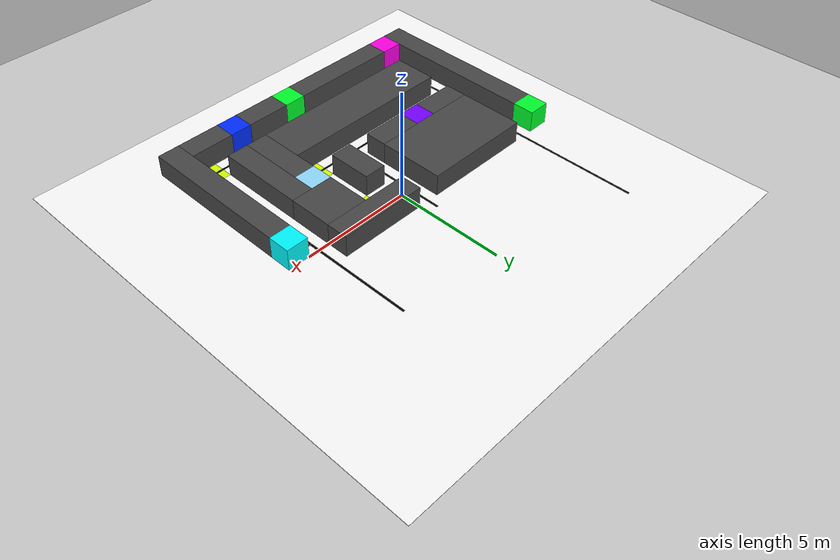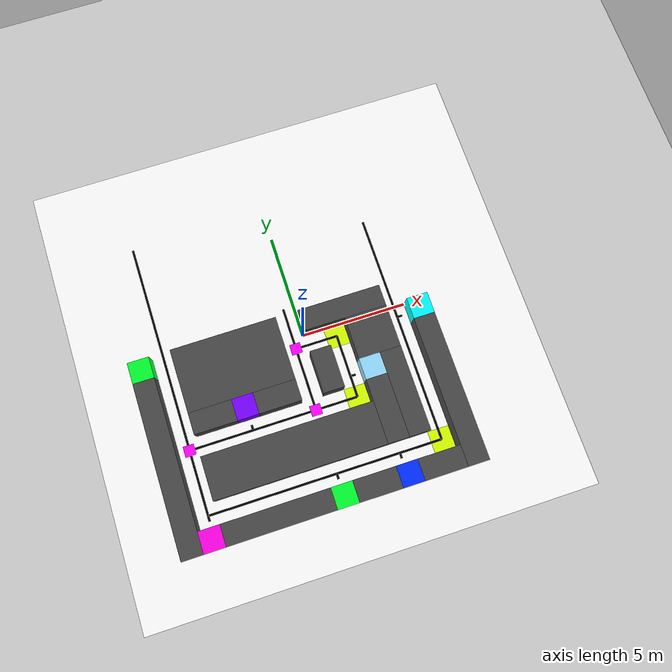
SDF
<sdf version="1.10">
 <world name="coloured_world">
  <model name="ground_plane">
   <static>true</static>
   <link name="link">
    <collision name="collision">
     <geometry><plane><normal>0 0 1</normal><size>100 100</size></plane></geometry>
    </collision>
    <visual name="visual">
     <geometry><plane><normal>0 0 1</normal><size>100 100</size></plane></geometry>
     <material>
      <ambient>0.800000012 0.800000012 0.800000012 1</ambient>
      <diffuse>0.800000012 0.800000012 0.800000012 1</diffuse>
      <specular>0.800000012 0.800000012 0.800000012 1</specular>
     </material>
    </visual>
    <inertial>
     <mass>1</mass>
     <inertia><ixx>1</ixx><ixy>0</ixy><ixz>0</ixz><iyy>1</iyy><iyz>0</iyz><izz>1</izz></inertia>
    </inertial>
   </link>
  </model>
  <model name="CHARGER_0">
   <pose>-7.5 0.5 0.5 4.6034300000052197e-07 4.603870000005235e-07 6.6837400000076367e-10</pose>
   <link name="box_link">
    <inertial>
     <inertia><ixx>0.16666</ixx><ixy>0</ixy><ixz>0</ixz><iyy>0.16666</iyy><iyz>0</iyz><izz>0.16666</izz></inertia>
     <mass>1</mass>
    </inertial>
    <collision name="box_collision"><geometry><box><size>1 1 1</size></box></geometry></collision>
    <visual name="box_visual">
     <geometry><box><size>1 1 1</size></box></geometry>
     <material>
      <ambient>0.300000012 0.300000012 0.300000012 1</ambient>
      <diffuse>0 1 0.175999999 1</diffuse>
      <specular>1 1 1 1</specular>
     </material>
    </visual>
   </link>
   <static>true</static>
  </model>
  <model name="box_2">
   <pose>-7.5 -4 0.5 4.6034300000052197e-07 4.603870000005235e-07 6.6837400000076367e-10</pose>
   <link name="box_link">
    <inertial>
     <inertia><ixx>0.16666</ixx><ixy>0</ixy><ixz>0</ixz><iyy>0.16666</iyy><iyz>0</iyz><izz>0.16666</izz></inertia>
     <mass>1</mass>
    </inertial>
    <collision name="box_collision"><geometry><box><size>1 8 1</size></box></geometry></collision>
    <visual name="box_visual">
     <geometry><box><size>1 8 1</size></box></geometry>
     <material>
      <ambient>0.300000012 0.300000012 0.300000012 1</ambient>
      <diffuse>0.277999997 0.277999997 0.277999997 1</diffuse>
      <specular>1 1 1 1</specular>
     </material>
    </visual>
   </link>
   <static>true</static>
  </model>
  <model name="HOUSE_6">
   <pose>5.5 -0.5 0.5 4.6840416479999999e-44 0 0</pose>
   <link name="box_link">
    <inertial>
     <inertia><ixx>0.16666</ixx><ixy>0</ixy><ixz>0</ixz><iyy>0.16666</iyy><iyz>0</iyz><izz>0.16666</izz></inertia>
     <mass>1</mass>
    </inertial>
    <collision name="box_collision"><geometry><box><size>1 1 1</size></box></geometry></collision>
    <visual name="box_visual">
     <geometry><box><size>1 1 1</size></box></geometry>
     <material>
      <ambient>0.300000012 0.300000012 0.300000012 1</ambient>
      <diffuse>0 0.984000027 1 1</diffuse>
      <specular>1 1 1 1</specular>
     </material>
    </visual>
   </link>
   <static>true</static>
  </model>
  <model name="box_9">
   <pose>5.5 -4.5 0.5 -8.9888212590000021e-45 0 0</pose>
   <link name="box_link">
    <inertial>
     <inertia><ixx>0.16666</ixx><ixy>0</ixy><ixz>0</ixz><iyy>0.16666</iyy><iyz>0</iyz><izz>0.16666</izz></inertia>
     <mass>1</mass>
    </inertial>
    <collision name="box_collision"><geometry><box><size>1 7 1</size></box></geometry></collision>
    <visual name="box_visual">
     <geometry><box><size>1 7 1</size></box></geometry>
     <material>
      <ambient>0.300000012 0.300000012 0.300000012 1</ambient>
      <diffuse>0.277999997 0.277999997 0.277999997 1</diffuse>
      <specular>1 1 1 1</specular>
     </material>
    </visual>
   </link>
   <static>true</static>
  </model>
  <model name="box_10">
   <pose>4 -7.5 0.5 0 0 0</pose>
   <link name="box_link">
    <inertial>
     <inertia><ixx>0.16666</ixx><ixy>0</ixy><ixz>0</ixz><iyy>0.16666</iyy><iyz>0</iyz><izz>0.16666</izz></inertia>
     <mass>1</mass>
    </inertial>
    <collision name="box_collision"><geometry><box><size>2 1 1</size></box></geometry></collision>
    <visual name="box_visual">
     <geometry><box><size>2 1 1</size></box></geometry>
     <material>
      <ambient>0.300000012 0.300000012 0.300000012 1</ambient>
      <diffuse>0.277999997 0.277999997 0.277999997 1</diffuse>
      <specular>1 1 1 1</specular>
     </material>
    </visual>
   </link>
   <static>true</static>
  </model>
  <model name="HOUSE_9">
   <pose>2.5 -7.5 0.5 0 0 0</pose>
   <link name="box_link">
    <inertial>
     <inertia><ixx>0.16666</ixx><ixy>0</ixy><ixz>0</ixz><iyy>0.16666</iyy><iyz>0</iyz><izz>0.16666</izz></inertia>
     <mass>1</mass>
    </inertial>
    <collision name="box_collision"><geometry><box><size>1 1 1</size></box></geometry></collision>
    <visual name="box_visual">
     <geometry><box><size>1 1 1</size></box></geometry>
     <material>
      <ambient>0.300000012 0.300000012 0.300000012 1</ambient>
      <diffuse>0 0.172999993 1 1</diffuse>
      <specular>1 1 1 1</specular>
     </material>
    </visual>
   </link>
   <static>true</static>
  </model>
  <model name="box_12">
   <pose>1 -7.5 0.5 0 0 0</pose>
   <link name="box_link">
    <inertial>
     <inertia><ixx>0.16666</ixx><ixy>0</ixy><ixz>0</ixz><iyy>0.16666</iyy><iyz>0</iyz><izz>0.16666</izz></inertia>
     <mass>1</mass>
    </inertial>
    <collision name="box_collision"><geometry><box><size>2 1 1</size></box></geometry></collision>
    <visual name="box_visual">
     <geometry><box><size>2 1 1</size></box></geometry>
     <material>
      <ambient>0.300000012 0.300000012 0.300000012 1</ambient>
      <diffuse>0.277999997 0.277999997 0.277999997 1</diffuse>
      <specular>1 1 1 1</specular>
     </material>
    </visual>
   </link>
   <static>true</static>
  </model>
  <model name="CHARGER_2">
   <pose>-0.5 -7.5 0.5 0 0 0</pose>
   <link name="box_link">
    <inertial>
     <inertia><ixx>0.16666</ixx><ixy>0</ixy><ixz>0</ixz><iyy>0.16666</iyy><iyz>0</iyz><izz>0.16666</izz></inertia>
     <mass>1</mass>
    </inertial>
    <collision name="box_collision"><geometry><box><size>1 1 1</size></box></geometry></collision>
    <visual name="box_visual">
     <geometry><box><size>1 1 1</size></box></geometry>
     <material>
      <ambient>0.300000012 0.300000012 0.300000012 1</ambient>
      <diffuse>0 1 0.175999999 1</diffuse>
      <specular>1 1 1 1</specular>
     </material>
    </visual>
   </link>
   <static>true</static>
  </model>
  <model name="box_14">
   <pose>-3.5 -7.5 0.5 0 0 0</pose>
   <link name="box_link">
    <inertial>
     <inertia><ixx>0.16666</ixx><ixy>0</ixy><ixz>0</ixz><iyy>0.16666</iyy><iyz>0</iyz><izz>0.16666</izz></inertia>
     <mass>1</mass>
    </inertial>
    <collision name="box_collision"><geometry><box><size>5 1 1</size></box></geometry></collision>
    <visual name="box_visual">
     <geometry><box><size>5 1 1</size></box></geometry>
     <material>
      <ambient>0.300000012 0.300000012 0.300000012 1</ambient>
      <diffuse>0.277999997 0.277999997 0.277999997 1</diffuse>
      <specular>1 1 1 1</specular>
     </material>
    </visual>
   </link>
   <static>true</static>
  </model>
  <model name="HOUSE_7">
   <pose>-6.5 -7.5 0.5 0 0 0</pose>
   <link name="box_link">
    <inertial>
     <inertia><ixx>0.16666</ixx><ixy>0</ixy><ixz>0</ixz><iyy>0.16666</iyy><iyz>0</iyz><izz>0.16666</izz></inertia>
     <mass>1</mass>
    </inertial>
    <collision name="box_collision"><geometry><box><size>1 1 1</size></box></geometry></collision>
    <visual name="box_visual">
     <geometry><box><size>1 1 1</size></box></geometry>
     <material>
      <ambient>0.300000012 0.300000012 0.300000012 1</ambient>
      <diffuse>1 0 0.898000002 1</diffuse>
      <specular>1 1 1 1</specular>
     </material>
    </visual>
   </link>
   <static>true</static>
  </model>
  <model name="box_29">
   <pose>-3.5 -0.5 0.5 0 0 0</pose>
   <link name="box_link">
    <inertial>
     <inertia><ixx>0.16666</ixx><ixy>0</ixy><ixz>0</ixz><iyy>0.16666</iyy><iyz>0</iyz><izz>0.16666</izz></inertia>
     <mass>1</mass>
    </inertial>
    <collision name="box_collision"><geometry><box><size>5 3 1</size></box></geometry></collision>
    <visual name="box_visual">
     <geometry><box><size>5 3 1</size></box></geometry>
     <material>
      <ambient>0.300000012 0.300000012 0.300000012 1</ambient>
      <diffuse>0.277999997 0.277999997 0.277999997 1</diffuse>
      <specular>1 1 1 1</specular>
     </material>
    </visual>
   </link>
   <static>true</static>
  </model>
  <model name="box_30">
   <pose>-5 -2.5 0.5 0 0 0</pose>
   <link name="box_link">
    <inertial>
     <inertia><ixx>0.16666</ixx><ixy>0</ixy><ixz>0</ixz><iyy>0.16666</iyy><iyz>0</iyz><izz>0.16666</izz></inertia>
     <mass>1</mass>
    </inertial>
    <collision name="box_collision"><geometry><box><size>2 1 1</size></box></geometry></collision>
    <visual name="box_visual">
     <geometry><box><size>2 1 1</size></box></geometry>
     <material>
      <ambient>0.300000012 0.300000012 0.300000012 1</ambient>
      <diffuse>0.277999997 0.277999997 0.277999997 1</diffuse>
      <specular>1 1 1 1</specular>
     </material>
    </visual>
   </link>
   <static>true</static>
  </model>
  <model name="HOUSE_8">
   <pose>-3.5 -2.5 0.5 0 0 0</pose>
   <link name="box_link">
    <inertial>
     <inertia><ixx>0.16666</ixx><ixy>0</ixy><ixz>0</ixz><iyy>0.16666</iyy><iyz>0</iyz><izz>0.16666</izz></inertia>
     <mass>1</mass>
    </inertial>
    <collision name="box_collision"><geometry><box><size>1 1 1</size></box></geometry></collision>
    <visual name="box_visual">
     <geometry><box><size>1 1 1</size></box></geometry>
     <material>
      <ambient>0.300000012 0.300000012 0.300000012 1</ambient>
      <diffuse>0.470999986 0 1 1</diffuse>
      <specular>1 1 1 1</specular>
     </material>
    </visual>
   </link>
   <static>true</static>
  </model>
  <model name="box_32">
   <pose>-2 -2.5 0.5 0 0 0</pose>
   <link name="box_link">
    <inertial>
     <inertia><ixx>0.16666</ixx><ixy>0</ixy><ixz>0</ixz><iyy>0.16666</iyy><iyz>0</iyz><izz>0.16666</izz></inertia>
     <mass>1</mass>
    </inertial>
    <collision name="box_collision"><geometry><box><size>2 1 1</size></box></geometry></collision>
    <visual name="box_visual">
     <geometry><box><size>2 1 1</size></box></geometry>
     <material>
      <ambient>0.300000012 0.300000012 0.300000012 1</ambient>
      <diffuse>0.277999997 0.277999997 0.277999997 1</diffuse>
      <specular>1 1 1 1</specular>
     </material>
    </visual>
   </link>
   <static>true</static>
  </model>
  <model name="box_33">
   <pose>0.5 -2 0.5 0 0 0</pose>
   <link name="box_link">
    <inertial>
     <inertia><ixx>0.16666</ixx><ixy>0</ixy><ixz>0</ixz><iyy>0.16666</iyy><iyz>0</iyz><izz>0.16666</izz></inertia>
     <mass>1</mass>
    </inertial>
    <collision name="box_collision"><geometry><box><size>1 2 1</size></box></geometry></collision>
    <visual name="box_visual">
     <geometry><box><size>1 2 1</size></box></geometry>
     <material>
      <ambient>0.300000012 0.300000012 0.300000012 1</ambient>
      <diffuse>0.277999997 0.277999997 0.277999997 1</diffuse>
      <specular>1 1 1 1</specular>
     </material>
    </visual>
   </link>
   <static>true</static>
  </model>
  <model name="box_34">
   <pose>2 0.5 0.5 0 0 0</pose>
   <link name="box_link">
    <inertial>
     <inertia><ixx>0.16666</ixx><ixy>0</ixy><ixz>0</ixz><iyy>0.16666</iyy><iyz>0</iyz><izz>0.16666</izz></inertia>
     <mass>1</mass>
    </inertial>
    <collision name="box_collision"><geometry><box><size>4 1 1</size></box></geometry></collision>
    <visual name="box_visual">
     <geometry><box><size>4 1 1</size></box></geometry>
     <material>
      <ambient>0.300000012 0.300000012 0.300000012 1</ambient>
      <diffuse>0.277999997 0.277999997 0.277999997 1</diffuse>
      <specular>1 1 1 1</specular>
     </material>
    </visual>
   </link>
   <static>true</static>
  </model>
  <model name="box_35">
   <pose>3 -1 0.5 0 0 0</pose>
   <link name="box_link">
    <inertial>
     <inertia><ixx>0.16666</ixx><ixy>0</ixy><ixz>0</ixz><iyy>0.16666</iyy><iyz>0</iyz><izz>0.16666</izz></inertia>
     <mass>1</mass>
    </inertial>
    <collision name="box_collision"><geometry><box><size>2 2 1</size></box></geometry></collision>
    <visual name="box_visual">
     <geometry><box><size>2 2 1</size></box></geometry>
     <material>
      <ambient>0.300000012 0.300000012 0.300000012 1</ambient>
      <diffuse>0.277999997 0.277999997 0.277999997 1</diffuse>
      <specular>1 1 1 1</specular>
     </material>
    </visual>
   </link>
   <static>true</static>
  </model>
  <model name="box_36">
   <pose>3.5 -4 0.5 0 0 0</pose>
   <link name="box_link">
    <inertial>
     <inertia><ixx>0.16666</ixx><ixy>0</ixy><ixz>0</ixz><iyy>0.16666</iyy><iyz>0</iyz><izz>0.16666</izz></inertia>
     <mass>1</mass>
    </inertial>
    <collision name="box_collision"><geometry><box><size>1 4 1</size></box></geometry></collision>
    <visual name="box_visual">
     <geometry><box><size>1 4 1</size></box></geometry>
     <material>
      <ambient>0.300000012 0.300000012 0.300000012 1</ambient>
      <diffuse>0.277999997 0.277999997 0.277999997 1</diffuse>
      <specular>1 1 1 1</specular>
     </material>
    </visual>
   </link>
   <static>true</static>
  </model>
  <model name="box_37">
   <pose>2.5 -4.5 0.5 0 0 0</pose>
   <link name="box_link">
    <inertial>
     <inertia><ixx>0.16666</ixx><ixy>0</ixy><ixz>0</ixz><iyy>0.16666</iyy><iyz>0</iyz><izz>0.16666</izz></inertia>
     <mass>1</mass>
    </inertial>
    <collision name="box_collision"><geometry><box><size>1 3 1</size></box></geometry></collision>
    <visual name="box_visual">
     <geometry><box><size>1 3 1</size></box></geometry>
     <material>
      <ambient>0.300000012 0.300000012 0.300000012 1</ambient>
      <diffuse>0.277999997 0.277999997 0.277999997 1</diffuse>
      <specular>1 1 1 1</specular>
     </material>
    </visual>
   </link>
   <static>true</static>
  </model>
  <model name="box_38">
   <pose>-2 -5 0.5 0 0 0</pose>
   <link name="box_link">
    <inertial>
     <inertia><ixx>0.16666</ixx><ixy>0</ixy><ixz>0</ixz><iyy>0.16666</iyy><iyz>0</iyz><izz>0.16666</izz></inertia>
     <mass>1</mass>
    </inertial>
    <collision name="box_collision"><geometry><box><size>8 2 1</size></box></geometry></collision>
    <visual name="box_visual">
     <geometry><box><size>8 2 1</size></box></geometry>
     <material>
      <ambient>0.300000012 0.300000012 0.300000012 1</ambient>
      <diffuse>0.277999997 0.277999997 0.277999997 1</diffuse>
      <specular>1 1 1 1</specular>
     </material>
    </visual>
   </link>
   <static>true</static>
  </model>
  <model name="HOUSE_10">
   <pose>2.5 -2.5 0.5 0 0 0</pose>
   <link name="box_link">
    <inertial>
     <inertia><ixx>0.16666</ixx><ixy>0</ixy><ixz>0</ixz><iyy>0.16666</iyy><iyz>0</iyz><izz>0.16666</izz></inertia>
     <mass>1</mass>
    </inertial>
    <collision name="box_collision"><geometry><box><size>1 1 1</size></box></geometry></collision>
    <visual name="box_visual">
     <geometry><box><size>1 1 1</size></box></geometry>
     <material>
      <ambient>0.300000012 0.300000012 0.300000012 1</ambient>
      <diffuse>0.573000014 0.862999976 1 1</diffuse>
      <specular>1 1 1 1</specular>
     </material>
    </visual>
   </link>
   <static>true</static>
  </model>
  <model name="line_0">
   <pose>-6.5 0 0 0 0 0</pose>
   <link name="box_link">
    <inertial>
     <inertia><ixx>0.16666</ixx><ixy>0</ixy><ixz>0</ixz><iyy>0.16666</iyy><iyz>0</iyz><izz>0.16666</izz></inertia>
     <mass>1</mass>
    </inertial>
    <collision name="box_collision">
     <geometry><box><size>0.10000000000000001 13 0.025000000000000001</size></box></geometry>
    </collision>
    <visual name="box_visual">
     <geometry><box><size>0.10000000000000001 13 0.025000000000000001</size></box></geometry>
     <material>
      <ambient>0.300000012 0.300000012 0.300000012 1</ambient>
      <diffuse>0 0 0 1</diffuse>
      <specular>1 1 1 1</specular>
     </material>
    </visual>
   </link>
   <static>true</static>
  </model>
  <model name="line_1">
   <pose>-1 -6.5 0 0 0 0</pose>
   <link name="box_link">
    <inertial>
     <inertia><ixx>0.16666</ixx><ixy>0</ixy><ixz>0</ixz><iyy>0.16666</iyy><iyz>0</iyz><izz>0.16666</izz></inertia>
     <mass>1</mass>
    </inertial>
    <collision name="box_collision">
     <geometry><box><size>11 0.10000000000000001 0.025000000000000001</size></box></geometry>
    </collision>
    <visual name="box_visual">
     <geometry><box><size>11 0.10000000000000001 0.025000000000000001</size></box></geometry>
     <material>
      <ambient>0.300000012 0.300000012 0.300000012 1</ambient>
      <diffuse>0 0 0 1</diffuse>
      <specular>1 1 1 1</specular>
     </material>
    </visual>
   </link>
   <static>true</static>
  </model>
  <model name="line_2">
   <pose>4.5 -1 0 0 0 0</pose>
   <link name="box_link">
    <inertial>
     <inertia><ixx>0.16666</ixx><ixy>0</ixy><ixz>0</ixz><iyy>0.16666</iyy><iyz>0</iyz><izz>0.16666</izz></inertia>
     <mass>1</mass>
    </inertial>
    <collision name="box_collision">
     <geometry><box><size>0.10000000000000001 11 0.025000000000000001</size></box></geometry>
    </collision>
    <visual name="box_visual">
     <geometry><box><size>0.10000000000000001 11 0.025000000000000001</size></box></geometry>
     <material>
      <ambient>0.300000012 0.300000012 0.300000012 1</ambient>
      <diffuse>0 0 0 1</diffuse>
      <specular>1 1 1 1</specular>
     </material>
    </visual>
   </link>
   <static>true</static>
  </model>
  <model name="line_4">
   <pose>-2.5 -3.5 0 0 0 0</pose>
   <link name="box_link">
    <inertial>
     <inertia><ixx>0.16666</ixx><ixy>0</ixy><ixz>0</ixz><iyy>0.16666</iyy><iyz>0</iyz><izz>0.16666</izz></inertia>
     <mass>1</mass>
    </inertial>
    <collision name="box_collision">
     <geometry><box><size>8 0.10000000000000001 0.025000000000000001</size></box></geometry>
    </collision>
    <visual name="box_visual">
     <geometry><box><size>8 0.10000000000000001 0.025000000000000001</size></box></geometry>
     <material>
      <ambient>0.300000012 0.300000012 0.300000012 1</ambient>
      <diffuse>0 0 0 1</diffuse>
      <specular>1 1 1 1</specular>
     </material>
    </visual>
   </link>
   <static>true</static>
  </model>
  <model name="line_5">
   <pose>-0.5 -1 0 0 0 0</pose>
   <link name="box_link">
    <inertial>
     <inertia><ixx>0.16666</ixx><ixy>0</ixy><ixz>0</ixz><iyy>0.16666</iyy><iyz>0</iyz><izz>0.16666</izz></inertia>
     <mass>1</mass>
    </inertial>
    <collision name="box_collision">
     <geometry><box><size>0.10000000000000001 5 0.025000000000000001</size></box></geometry>
    </collision>
    <visual name="box_visual">
     <geometry><box><size>0.10000000000000001 5 0.025000000000000001</size></box></geometry>
     <material>
      <ambient>0.300000012 0.300000012 0.300000012 1</ambient>
      <diffuse>0 0 0 1</diffuse>
      <specular>1 1 1 1</specular>
     </material>
    </visual>
   </link>
   <static>true</static>
  </model>
  <model name="line_6">
   <pose>1.5 -2 0 0 0 0</pose>
   <link name="box_link">
    <inertial>
     <inertia><ixx>0.16666</ixx><ixy>0</ixy><ixz>0</ixz><iyy>0.16666</iyy><iyz>0</iyz><izz>0.16666</izz></inertia>
     <mass>1</mass>
    </inertial>
    <collision name="box_collision">
     <geometry><box><size>0.10000000000000001 3 0.025000000000000001</size></box></geometry>
    </collision>
    <visual name="box_visual">
     <geometry><box><size>0.10000000000000001 3 0.025000000000000001</size></box></geometry>
     <material>
      <ambient>0.300000012 0.300000012 0.300000012 1</ambient>
      <diffuse>0 0 0 1</diffuse>
      <specular>1 1 1 1</specular>
     </material>
    </visual>
   </link>
   <static>true</static>
  </model>
  <model name="line_7">
   <pose>0.5 -0.5 0 0 0 0</pose>
   <link name="box_link">
    <inertial>
     <inertia><ixx>0.16666</ixx><ixy>0</ixy><ixz>0</ixz><iyy>0.16666</iyy><iyz>0</iyz><izz>0.16666</izz></inertia>
     <mass>1</mass>
    </inertial>
    <collision name="box_collision">
     <geometry><box><size>2 0.10000000000000001 0.025000000000000001</size></box></geometry>
    </collision>
    <visual name="box_visual">
     <geometry><box><size>2 0.10000000000000001 0.025000000000000001</size></box></geometry>
     <material>
      <ambient>0.300000012 0.300000012 0.300000012 1</ambient>
      <diffuse>0 0 0 1</diffuse>
      <specular>1 1 1 1</specular>
     </material>
    </visual>
   </link>
   <static>true</static>
  </model>
  <model name="in_line_H8">
   <pose>-3.5 -3.375 0 0 0 0</pose>
   <link name="box_link">
    <inertial>
     <inertia><ixx>0.16666</ixx><ixy>0</ixy><ixz>0</ixz><iyy>0.16666</iyy><iyz>0</iyz><izz>0.16666</izz></inertia>
     <mass>1</mass>
    </inertial>
    <collision name="box_collision">
     <geometry><box><size>0.10000000000000001 0.25 0.025000000000000001</size></box></geometry>
    </collision>
    <visual name="box_visual">
     <geometry><box><size>0.10000000000000001 0.25 0.025000000000000001</size></box></geometry>
     <material>
      <ambient>0.300000012 0.300000012 0.300000012 1</ambient>
      <diffuse>0 0 0 1</diffuse>
      <specular>1 1 1 1</specular>
     </material>
    </visual>
   </link>
   <static>true</static>
  </model>
  <model name="in_line_H9">
   <pose>2.5 -6.625 0 0 0 0</pose>
   <link name="box_link">
    <inertial>
     <inertia><ixx>0.16666</ixx><ixy>0</ixy><ixz>0</ixz><iyy>0.16666</iyy><iyz>0</iyz><izz>0.16666</izz></inertia>
     <mass>1</mass>
    </inertial>
    <collision name="box_collision">
     <geometry><box><size>0.10000000000000001 0.25 0.025000000000000001</size></box></geometry>
    </collision>
    <visual name="box_visual">
     <geometry><box><size>0.10000000000000001 0.25 0.025000000000000001</size></box></geometry>
     <material>
      <ambient>0.300000012 0.300000012 0.300000012 1</ambient>
      <diffuse>0 0 0 1</diffuse>
      <specular>1 1 1 1</specular>
     </material>
    </visual>
   </link>
   <static>true</static>
  </model>
  <model name="in_line_C2">
   <pose>-0.5 -6.625 0 0 0 0</pose>
   <link name="box_link">
    <inertial>
     <inertia><ixx>0.16666</ixx><ixy>0</ixy><ixz>0</ixz><iyy>0.16666</iyy><iyz>0</iyz><izz>0.16666</izz></inertia>
     <mass>1</mass>
    </inertial>
    <collision name="box_collision">
     <geometry><box><size>0.10000000000000001 0.25 0.025000000000000001</size></box></geometry>
    </collision>
    <visual name="box_visual">
     <geometry><box><size>0.10000000000000001 0.25 0.025000000000000001</size></box></geometry>
     <material>
      <ambient>0.300000012 0.300000012 0.300000012 1</ambient>
      <diffuse>0 0 0 1</diffuse>
      <specular>1 1 1 1</specular>
     </material>
    </visual>
   </link>
   <static>true</static>
  </model>
  <model name="in_line_H7">
   <pose>-6.5 -6.625 0 0 0 0</pose>
   <link name="box_link">
    <inertial>
     <inertia><ixx>0.16666</ixx><ixy>0</ixy><ixz>0</ixz><iyy>0.16666</iyy><iyz>0</iyz><izz>0.16666</izz></inertia>
     <mass>1</mass>
    </inertial>
    <collision name="box_collision">
     <geometry><box><size>0.10000000000000001 0.25 0.025000000000000001</size></box></geometry>
    </collision>
    <visual name="box_visual">
     <geometry><box><size>0.10000000000000001 0.25 0.025000000000000001</size></box></geometry>
     <material>
      <ambient>0.300000012 0.300000012 0.300000012 1</ambient>
      <diffuse>0 0 0 1</diffuse>
      <specular>1 1 1 1</specular>
     </material>
    </visual>
   </link>
   <static>true</static>
  </model>
  <model name="in_line_H6">
   <pose>4.625 -0.5 0 0 0 0</pose>
   <link name="box_link">
    <inertial>
     <inertia><ixx>0.16666</ixx><ixy>0</ixy><ixz>0</ixz><iyy>0.16666</iyy><iyz>0</iyz><izz>0.16666</izz></inertia>
     <mass>1</mass>
    </inertial>
    <collision name="box_collision">
     <geometry><box><size>0.25 0.10000000000000001 0.025000000000000001</size></box></geometry>
    </collision>
    <visual name="box_visual">
     <geometry><box><size>0.25 0.10000000000000001 0.025000000000000001</size></box></geometry>
     <material>
      <ambient>0.300000012 0.300000012 0.300000012 1</ambient>
      <diffuse>0 0 0 1</diffuse>
      <specular>1 1 1 1</specular>
     </material>
    </visual>
   </link>
   <static>true</static>
  </model>
  <model name="in_line_H10">
   <pose>1.625 -2.5 0 0 0 0</pose>
   <link name="box_link">
    <inertial>
     <inertia><ixx>0.16666</ixx><ixy>0</ixy><ixz>0</ixz><iyy>0.16666</iyy><iyz>0</iyz><izz>0.16666</izz></inertia>
     <mass>1</mass>
    </inertial>
    <collision name="box_collision">
     <geometry><box><size>0.25 0.10000000000000001 0.025000000000000001</size></box></geometry>
    </collision>
    <visual name="box_visual">
     <geometry><box><size>0.25 0.10000000000000001 0.025000000000000001</size></box></geometry>
     <material>
      <ambient>0.300000012 0.300000012 0.300000012 1</ambient>
      <diffuse>0 0 0 1</diffuse>
      <specular>1 1 1 1</specular>
     </material>
    </visual>
   </link>
   <static>true</static>
  </model>
  <model name="floor">
   <link name="box_link">
    <inertial>
     <inertia><ixx>0.16666</ixx><ixy>0</ixy><ixz>0</ixz><iyy>0.16666</iyy><iyz>0</iyz><izz>0.16666</izz></inertia>
     <mass>1</mass>
    </inertial>
    <collision name="box_collision"><geometry><box><size>21 21 0.024</size></box></geometry></collision>
    <visual name="box_visual">
     <geometry><box><size>21 21 0.024</size></box></geometry>
     <material>
      <ambient>0.300000012 0.300000012 0.300000012 1</ambient>
      <diffuse>1 1 1 1</diffuse>
      <specular>1 1 1 1</specular>
     </material>
    </visual>
   </link>
   <static>true</static>
  </model>
  <model name="B">
   <pose>-6.5 -3.5 0 0 0 0</pose>
   <link name="box_link">
    <inertial>
     <inertia><ixx>0.16666</ixx><ixy>0</ixy><ixz>0</ixz><iyy>0.16666</iyy><iyz>0</iyz><izz>0.16666</izz></inertia>
     <mass>1</mass>
    </inertial>
    <collision name="box_collision"><geometry><box><size>0.5 0.5 0.02501</size></box></geometry></collision>
    <visual name="box_visual">
     <geometry><box><size>0.5 0.5 0.02501</size></box></geometry>
     <material>
      <ambient>0.300000012 0.300000012 0.300000012 1</ambient>
      <diffuse>1 0 1 1</diffuse>
      <specular>1 1 1 1</specular>
     </material>
    </visual>
   </link>
   <static>true</static>
  </model>
  <model name="E">
   <pose>-0.5 -0.5 0 0 0 0</pose>
   <link name="box_link">
    <inertial>
     <inertia><ixx>0.16666</ixx><ixy>0</ixy><ixz>0</ixz><iyy>0.16666</iyy><iyz>0</iyz><izz>0.16666</izz></inertia>
     <mass>1</mass>
    </inertial>
    <collision name="box_collision"><geometry><box><size>0.5 0.5 0.02501</size></box></geometry></collision>
    <visual name="box_visual">
     <geometry><box><size>0.5 0.5 0.02501</size></box></geometry>
     <material>
      <ambient>0.300000012 0.300000012 0.300000012 1</ambient>
      <diffuse>1 0 1 1</diffuse>
      <specular>1 1 1 1</specular>
     </material>
    </visual>
   </link>
   <static>true</static>
  </model>
  <model name="F">
   <pose>-0.5 -3.5 0 0 0 0</pose>
   <link name="box_link">
    <inertial>
     <inertia><ixx>0.16666</ixx><ixy>0</ixy><ixz>0</ixz><iyy>0.16666</iyy><iyz>0</iyz><izz>0.16666</izz></inertia>
     <mass>1</mass>
    </inertial>
    <collision name="box_collision"><geometry><box><size>0.5 0.5 0.02501</size></box></geometry></collision>
    <visual name="box_visual">
     <geometry><box><size>0.5 0.5 0.02501</size></box></geometry>
     <material>
      <ambient>0.300000012 0.300000012 0.300000012 1</ambient>
      <diffuse>1 0 1 1</diffuse>
      <specular>1 1 1 1</specular>
     </material>
    </visual>
   </link>
   <static>true</static>
  </model>
  <model name="alpha">
   <pose>4.5 -6.5 0 0 0 0</pose>
   <link name="box_link">
    <inertial>
     <inertia><ixx>0.16666</ixx><ixy>0</ixy><ixz>0</ixz><iyy>0.16666</iyy><iyz>0</iyz><izz>0.16666</izz></inertia>
     <mass>1</mass>
    </inertial>
    <collision name="box_collision"><geometry><box><size>1 1 0.02501</size></box></geometry></collision>
    <visual name="box_visual">
     <geometry><box><size>1 1 0.02499</size></box></geometry>
     <material>
      <ambient>0.300000012 0.300000012 0.300000012 1</ambient>
      <diffuse>0.85 1 0 1</diffuse>
      <specular>1 1 1 1</specular>
     </material>
    </visual>
   </link>
   <static>true</static>
  </model>
  <model name="gamma">
   <pose>1.5 -0.5 0 0 0 0</pose>
   <link name="box_link">
    <inertial>
     <inertia><ixx>0.16666</ixx><ixy>0</ixy><ixz>0</ixz><iyy>0.16666</iyy><iyz>0</iyz><izz>0.16666</izz></inertia>
     <mass>1</mass>
    </inertial>
    <collision name="box_collision"><geometry><box><size>1 1 0.02501</size></box></geometry></collision>
    <visual name="box_visual">
     <geometry><box><size>1 1 0.02499</size></box></geometry>
     <material>
      <ambient>0.300000012 0.300000012 0.300000012 1</ambient>
      <diffuse>0.85 1 0 1</diffuse>
      <specular>1 1 1 1</specular>
     </material>
    </visual>
   </link>
   <static>true</static>
  </model>
  <model name="delta">
   <pose>1.5 -3.5 0 0 0 0</pose>
   <link name="box_link">
    <inertial>
     <inertia><ixx>0.16666</ixx><ixy>0</ixy><ixz>0</ixz><iyy>0.16666</iyy><iyz>0</iyz><izz>0.16666</izz></inertia>
     <mass>1</mass>
    </inertial>
    <collision name="box_collision"><geometry><box><size>1 1 0.02501</size></box></geometry></collision>
    <visual name="box_visual">
     <geometry><box><size>1 1 0.02499</size></box></geometry>
     <material>
      <ambient>0.300000012 0.300000012 0.300000012 1</ambient>
      <diffuse>0.85 1 0 1</diffuse>
      <specular>1 1 1 1</specular>
     </material>
    </visual>
   </link>
   <static>true</static>
  </model>
 </world>
</sdf>
